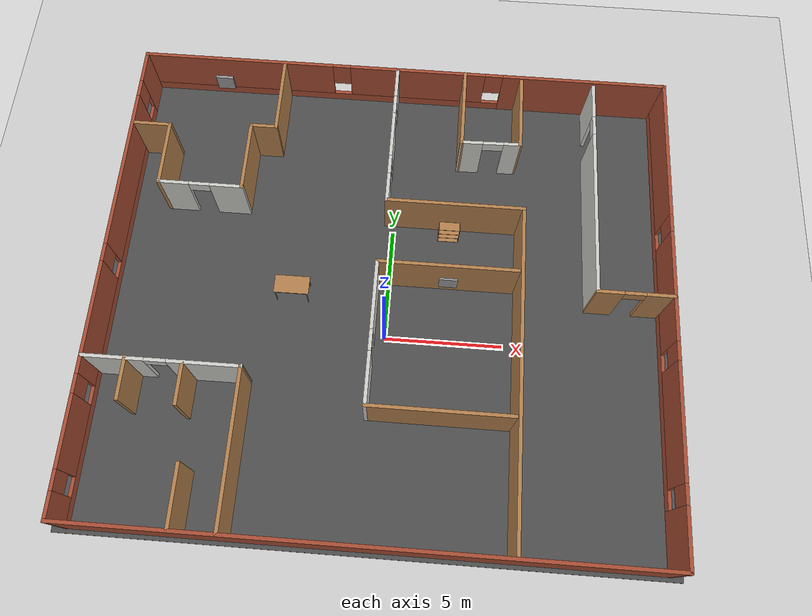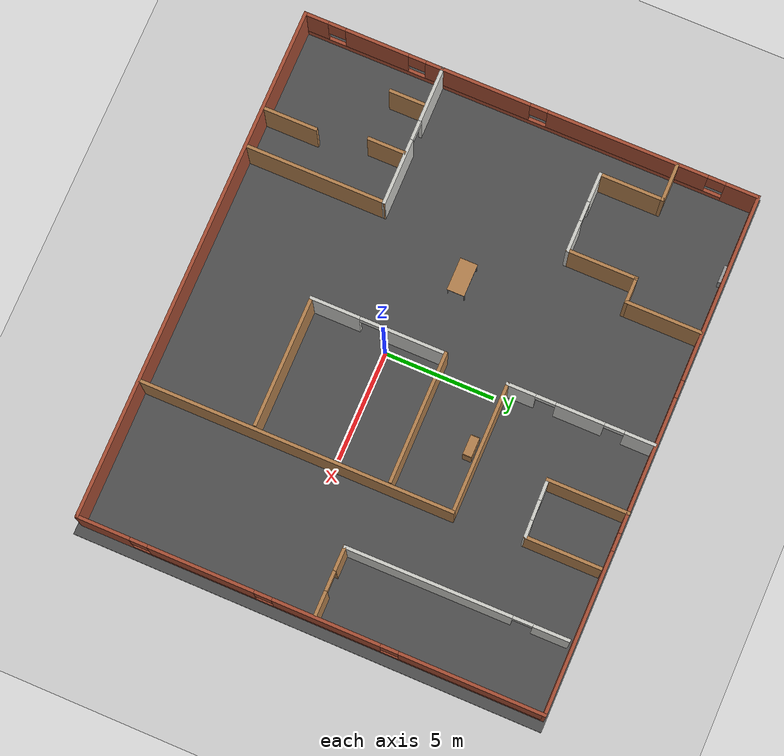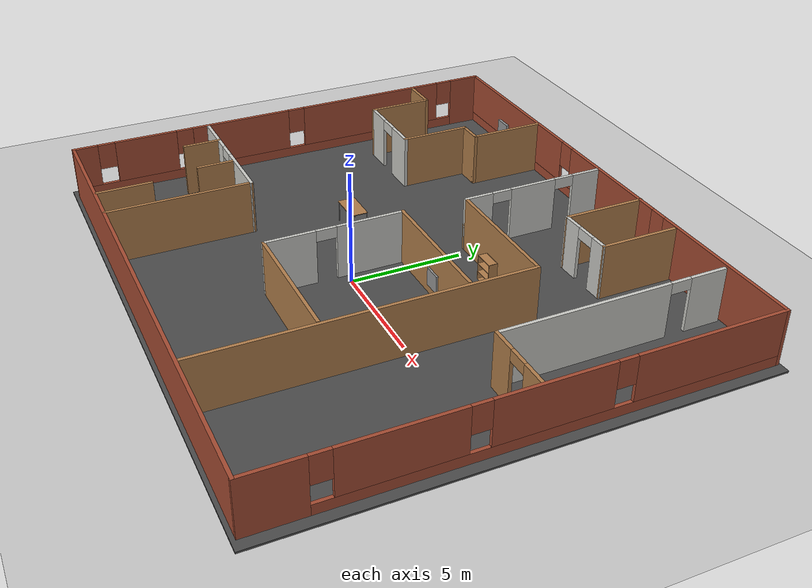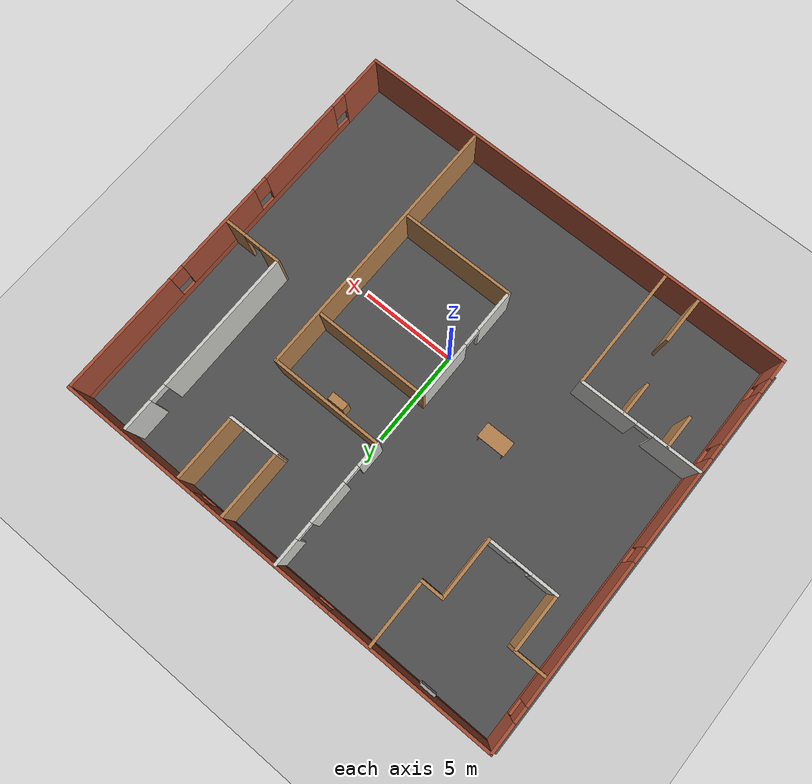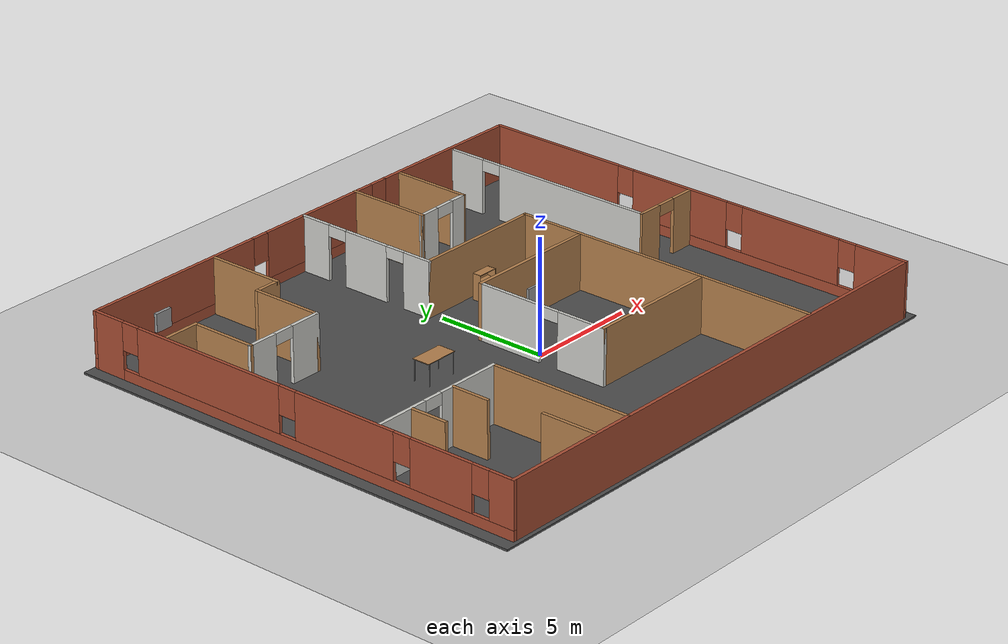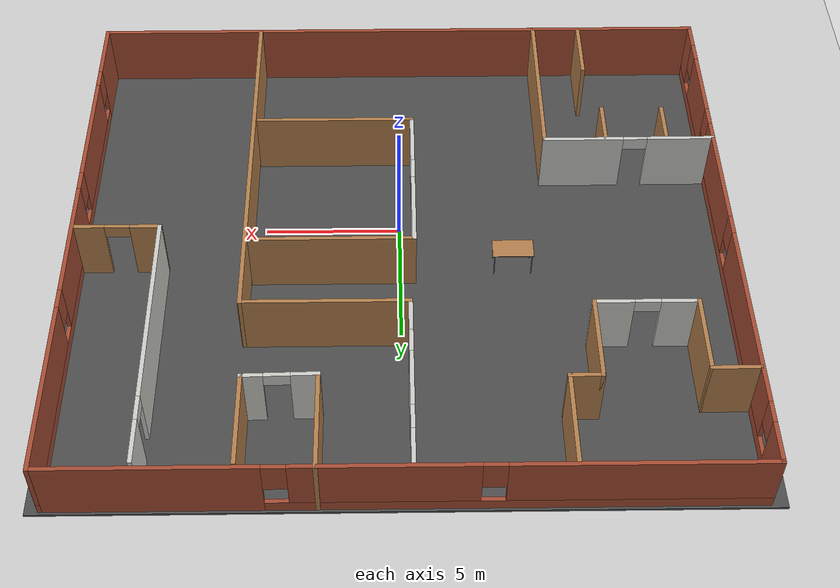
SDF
<sdf version="1.7">
 <world name="default">
  <light name="sun" type="directional">
   <pose>0 0 10 0 -0 0</pose>
   <diffuse>0.8 0.8 0.8 1</diffuse>
   <specular>0.2 0.2 0.2 1</specular>
   <attenuation>
    <range>1000</range>
    <constant>0.9</constant>
    <linear>0.01</linear>
    <quadratic>0.001</quadratic>
   </attenuation>
   <direction>-0.5 0.1 -0.9</direction>
   <spot><inner_angle>0</inner_angle><outer_angle>0</outer_angle><falloff>0</falloff></spot>
  </light>
  <model name="ground_plane">
   <static>1</static>
   <link name="link">
    <collision name="collision">
     <geometry><plane><normal>0 0 1</normal><size>100 100</size></plane></geometry>
     <surface><friction><ode><mu>100</mu><mu2>50</mu2></ode></friction></surface>
    </collision>
    <visual name="visual">
     <cast_shadows>0</cast_shadows>
     <geometry><plane><normal>0 0 1</normal><size>100 100</size></plane></geometry>
     <material>
      <script><uri>file://media/materials/scripts/gazebo.material</uri><name>Gazebo/Grey</name></script>
     </material>
    </visual>
   </link>
  </model>
  <gravity>0 0 -9.8</gravity>
  <magnetic_field>6e-06 2.3e-05 -4.2e-05</magnetic_field>
  <atmosphere type="adiabatic"/>
  <physics type="ode">
   <max_step_size>0.001</max_step_size>
   <real_time_factor>1</real_time_factor>
   <real_time_update_rate>1000</real_time_update_rate>
  </physics>
  <scene><ambient>0.4 0.4 0.4 1</ambient><background>0.7 0.7 0.7 1</background><shadows>1</shadows></scene>
  <audio><device>default</device></audio>
  <spherical_coordinates>
   <surface_model>EARTH_WGS84</surface_model>
   <latitude_deg>0</latitude_deg>
   <longitude_deg>0</longitude_deg>
   <elevation>0</elevation>
   <heading_deg>0</heading_deg>
  </spherical_coordinates>
  <model name="jetracer_plan">
   <pose>-0.073417 1.67279 0 0 -0 0</pose>
   <link name="Wall_0">
    <pose>-11.8 -0.006406 0 0 -0 -1.5708</pose>
    <visual name="Wall_0_Visual_0">
     <pose>-9.71925 0 1.25 0 -0 0</pose>
     <geometry><box><size>1.5615 0.15 2.5</size></box></geometry>
     <material>
      <script><uri>file://media/materials/scripts/gazebo.material</uri><name>Gazebo/Bricks</name></script>
      <ambient>1 1 1 1</ambient>
     </material>
     <meta><layer>0</layer></meta>
    </visual>
    <collision name="Wall_0_Collision_0">
     <geometry><box><size>1.5615 0.15 2.5</size></box></geometry>
     <pose>-9.71925 0 1.25 0 -0 0</pose>
    </collision>
    <visual name="Wall_0_Visual_1">
     <pose>0.78075 0 0.25 0 -0 0</pose>
     <geometry><box><size>19.4385 0.15 0.5</size></box></geometry>
     <material>
      <script><uri>file://media/materials/scripts/gazebo.material</uri><name>Gazebo/Bricks</name></script>
      <ambient>1 1 1 1</ambient>
     </material>
     <meta><layer>0</layer></meta>
    </visual>
    <collision name="Wall_0_Collision_1">
     <geometry><box><size>19.4385 0.15 0.5</size></box></geometry>
     <pose>0.78075 0 0.25 0 -0 0</pose>
    </collision>
    <visual name="Wall_0_Visual_2">
     <pose>-4.47355 0 1.5 0 -0 0</pose>
     <geometry><box><size>7.32991 0.15 2</size></box></geometry>
     <material>
      <script><uri>file://media/materials/scripts/gazebo.material</uri><name>Gazebo/Bricks</name></script>
      <ambient>1 1 1 1</ambient>
     </material>
     <meta><layer>0</layer></meta>
    </visual>
    <collision name="Wall_0_Collision_2">
     <geometry><box><size>7.32991 0.15 2</size></box></geometry>
     <pose>-4.47355 0 1.5 0 -0 0</pose>
    </collision>
    <visual name="Wall_0_Visual_3">
     <pose>2.40606 0 1.5 0 -0 0</pose>
     <geometry><box><size>4.82932 0.15 2</size></box></geometry>
     <material>
      <script><uri>file://media/materials/scripts/gazebo.material</uri><name>Gazebo/Bricks</name></script>
      <ambient>1 1 1 1</ambient>
     </material>
     <meta><layer>0</layer></meta>
    </visual>
    <collision name="Wall_0_Collision_3">
     <geometry><box><size>4.82932 0.15 2</size></box></geometry>
     <pose>2.40606 0 1.5 0 -0 0</pose>
    </collision>
    <visual name="Wall_0_Visual_4">
     <pose>7.08238 0 1.5 0 -0 0</pose>
     <geometry><box><size>2.9233 0.15 2</size></box></geometry>
     <material>
      <script><uri>file://media/materials/scripts/gazebo.material</uri><name>Gazebo/Bricks</name></script>
      <ambient>1 1 1 1</ambient>
     </material>
     <meta><layer>0</layer></meta>
    </visual>
    <collision name="Wall_0_Collision_4">
     <geometry><box><size>2.9233 0.15 2</size></box></geometry>
     <pose>7.08238 0 1.5 0 -0 0</pose>
    </collision>
    <visual name="Wall_0_Visual_5">
     <pose>9.92202 0 1.5 0 -0 0</pose>
     <geometry><box><size>1.15597 0.15 2</size></box></geometry>
     <material>
      <script><uri>file://media/materials/scripts/gazebo.material</uri><name>Gazebo/Bricks</name></script>
      <ambient>1 1 1 1</ambient>
     </material>
     <meta><layer>0</layer></meta>
    </visual>
    <collision name="Wall_0_Collision_5">
     <geometry><box><size>1.15597 0.15 2</size></box></geometry>
     <pose>9.92202 0 1.5 0 -0 0</pose>
    </collision>
    <visual name="Wall_0_Visual_6">
     <pose>-8.5385 0 1.9 0 -0 0</pose>
     <geometry><box><size>0.8 0.15 1.2</size></box></geometry>
     <material>
      <script><uri>file://media/materials/scripts/gazebo.material</uri><name>Gazebo/Bricks</name></script>
      <ambient>1 1 1 1</ambient>
     </material>
     <meta><layer>0</layer></meta>
    </visual>
    <collision name="Wall_0_Collision_6">
     <geometry><box><size>0.8 0.15 1.2</size></box></geometry>
     <pose>-8.5385 0 1.9 0 -0 0</pose>
    </collision>
    <visual name="Wall_0_Visual_7">
     <pose>-0.408595 0 1.9 0 -0 0</pose>
     <geometry><box><size>0.8 0.15 1.2</size></box></geometry>
     <material>
      <script><uri>file://media/materials/scripts/gazebo.material</uri><name>Gazebo/Bricks</name></script>
      <ambient>1 1 1 1</ambient>
     </material>
     <meta><layer>0</layer></meta>
    </visual>
    <collision name="Wall_0_Collision_7">
     <geometry><box><size>0.8 0.15 1.2</size></box></geometry>
     <pose>-0.408595 0 1.9 0 -0 0</pose>
    </collision>
    <visual name="Wall_0_Visual_8">
     <pose>5.22073 0 1.9 0 -0 0</pose>
     <geometry><box><size>0.8 0.15 1.2</size></box></geometry>
     <material>
      <script><uri>file://media/materials/scripts/gazebo.material</uri><name>Gazebo/Bricks</name></script>
      <ambient>1 1 1 1</ambient>
     </material>
     <meta><layer>0</layer></meta>
    </visual>
    <collision name="Wall_0_Collision_8">
     <geometry><box><size>0.8 0.15 1.2</size></box></geometry>
     <pose>5.22073 0 1.9 0 -0 0</pose>
    </collision>
    <visual name="Wall_0_Visual_9">
     <pose>8.94403 0 1.9 0 -0 0</pose>
     <geometry><box><size>0.8 0.15 1.2</size></box></geometry>
     <material>
      <script><uri>file://media/materials/scripts/gazebo.material</uri><name>Gazebo/Bricks</name></script>
      <ambient>1 1 1 1</ambient>
     </material>
     <meta><layer>0</layer></meta>
    </visual>
    <collision name="Wall_0_Collision_9">
     <geometry><box><size>0.8 0.15 1.2</size></box></geometry>
     <pose>8.94403 0 1.9 0 -0 0</pose>
    </collision>
   </link>
   <link name="Wall_1">
    <collision name="Wall_1_Collision">
     <geometry><box><size>23.75 0.15 2.5</size></box></geometry>
     <pose>0 0 1.25 0 -0 0</pose>
    </collision>
    <visual name="Wall_1_Visual">
     <pose>0 0 1.25 0 -0 0</pose>
     <geometry><box><size>23.75 0.15 2.5</size></box></geometry>
     <material>
      <script><uri>file://media/materials/scripts/gazebo.material</uri><name>Gazebo/Bricks</name></script>
      <ambient>1 1 1 1</ambient>
     </material>
     <meta><layer>0</layer></meta>
    </visual>
    <pose>0 -10.4314 0 0 -0 0</pose>
   </link>
   <link name="Wall_10">
    <collision name="Wall_10_Collision">
     <geometry><box><size>1.75 0.15 2.5</size></box></geometry>
     <pose>0 0 1.25 0 -0 0</pose>
    </collision>
    <visual name="Wall_10_Visual">
     <pose>0 0 1.25 0 -0 0</pose>
     <geometry><box><size>1.75 0.15 2.5</size></box></geometry>
     <material>
      <script><uri>file://media/materials/scripts/gazebo.material</uri><name>Gazebo/Wood</name></script>
      <ambient>1 1 1 1</ambient>
     </material>
     <meta><layer>0</layer></meta>
    </visual>
    <pose>-10.0459 -4.89784 0 0 -0 1.5708</pose>
   </link>
   <link name="Wall_12">
    <pose>-0.254809 7.05825 0 0 -0 -1.5708</pose>
    <visual name="Wall_12_Visual_0">
     <pose>-2.66527 0 1.25 0 -0 0</pose>
     <geometry><box><size>1.41945 0.15 2.5</size></box></geometry>
     <material>
      <script><uri>file://media/materials/scripts/gazebo.material</uri><name>Gazebo/CeilingTiled</name></script>
      <ambient>1 1 1 1</ambient>
     </material>
     <meta><layer>0</layer></meta>
    </visual>
    <collision name="Wall_12_Collision_0">
     <geometry><box><size>1.41945 0.15 2.5</size></box></geometry>
     <pose>-2.66527 0 1.25 0 -0 0</pose>
    </collision>
    <visual name="Wall_12_Visual_1">
     <pose>0.036887 0 1.25 0 -0 0</pose>
     <geometry><box><size>2.18486 0.15 2.5</size></box></geometry>
     <material>
      <script><uri>file://media/materials/scripts/gazebo.material</uri><name>Gazebo/CeilingTiled</name></script>
      <ambient>1 1 1 1</ambient>
     </material>
     <meta><layer>0</layer></meta>
    </visual>
    <collision name="Wall_12_Collision_1">
     <geometry><box><size>2.18486 0.15 2.5</size></box></geometry>
     <pose>0.036887 0 1.25 0 -0 0</pose>
    </collision>
    <visual name="Wall_12_Visual_2">
     <pose>2.70216 0 1.25 0 -0 0</pose>
     <geometry><box><size>1.34568 0.15 2.5</size></box></geometry>
     <material>
      <script><uri>file://media/materials/scripts/gazebo.material</uri><name>Gazebo/CeilingTiled</name></script>
      <ambient>1 1 1 1</ambient>
     </material>
     <meta><layer>0</layer></meta>
    </visual>
    <collision name="Wall_12_Collision_2">
     <geometry><box><size>1.34568 0.15 2.5</size></box></geometry>
     <pose>2.70216 0 1.25 0 -0 0</pose>
    </collision>
    <visual name="Wall_12_Visual_3">
     <pose>-1.50555 0 2.25 0 -0 0</pose>
     <geometry><box><size>0.9 0.15 0.5</size></box></geometry>
     <material>
      <script><uri>file://media/materials/scripts/gazebo.material</uri><name>Gazebo/CeilingTiled</name></script>
      <ambient>1 1 1 1</ambient>
     </material>
     <meta><layer>0</layer></meta>
    </visual>
    <collision name="Wall_12_Collision_3">
     <geometry><box><size>0.9 0.15 0.5</size></box></geometry>
     <pose>-1.50555 0 2.25 0 -0 0</pose>
    </collision>
    <visual name="Wall_12_Visual_4">
     <pose>1.57932 0 2.25 0 -0 0</pose>
     <geometry><box><size>0.9 0.15 0.5</size></box></geometry>
     <material>
      <script><uri>file://media/materials/scripts/gazebo.material</uri><name>Gazebo/CeilingTiled</name></script>
      <ambient>1 1 1 1</ambient>
     </material>
     <meta><layer>0</layer></meta>
    </visual>
    <collision name="Wall_12_Collision_4">
     <geometry><box><size>0.9 0.15 0.5</size></box></geometry>
     <pose>1.57932 0 2.25 0 -0 0</pose>
    </collision>
   </link>
   <link name="Wall_13">
    <collision name="Wall_13_Collision">
     <geometry><box><size>6 0.15 2.5</size></box></geometry>
     <pose>0 0 1.25 0 -0 0</pose>
    </collision>
    <visual name="Wall_13_Visual">
     <pose>0 0 1.25 0 -0 0</pose>
     <geometry><box><size>6 0.15 2.5</size></box></geometry>
     <material>
      <script><uri>file://media/materials/scripts/gazebo.material</uri><name>Gazebo/Wood</name></script>
      <ambient>1 1 1 1</ambient>
     </material>
     <meta><layer>0</layer></meta>
    </visual>
    <pose>2.67019 3.75825 0 0 -0 0</pose>
   </link>
   <link name="Wall_14">
    <collision name="Wall_14_Collision">
     <geometry><box><size>14.25 0.15 2.5</size></box></geometry>
     <pose>0 0 1.25 0 -0 0</pose>
    </collision>
    <visual name="Wall_14_Visual">
     <pose>0 0 1.25 0 -0 0</pose>
     <geometry><box><size>14.25 0.15 2.5</size></box></geometry>
     <material>
      <script><uri>file://media/materials/scripts/gazebo.material</uri><name>Gazebo/Wood</name></script>
      <ambient>1 1 1 1</ambient>
     </material>
     <meta><layer>0</layer></meta>
    </visual>
    <pose>5.59519 -3.29175 0 0 -0 -1.5708</pose>
   </link>
   <link name="Wall_16">
    <collision name="Wall_16_Collision">
     <geometry><box><size>6 0.15 2.5</size></box></geometry>
     <pose>0 0 1.25 0 -0 0</pose>
    </collision>
    <visual name="Wall_16_Visual">
     <pose>0 0 1.25 0 -0 0</pose>
     <geometry><box><size>6 0.15 2.5</size></box></geometry>
     <material>
      <script><uri>file://media/materials/scripts/gazebo.material</uri><name>Gazebo/Wood</name></script>
      <ambient>1 1 1 1</ambient>
     </material>
     <meta><layer>0</layer></meta>
    </visual>
    <pose>2.49222 0.884761 0 0 -0 3.14159</pose>
   </link>
   <link name="Wall_17">
    <pose>-0.432782 -2.16524 0 0 -0 -1.5708</pose>
    <visual name="Wall_17_Visual_0">
     <pose>-1.59353 0 1.25 0 -0 0</pose>
     <geometry><box><size>3.06293 0.15 2.5</size></box></geometry>
     <material>
      <script><uri>file://media/materials/scripts/gazebo.material</uri><name>Gazebo/CeilingTiled</name></script>
      <ambient>1 1 1 1</ambient>
     </material>
     <meta><layer>0</layer></meta>
    </visual>
    <collision name="Wall_17_Collision_0">
     <geometry><box><size>3.06293 0.15 2.5</size></box></geometry>
     <pose>-1.59353 0 1.25 0 -0 0</pose>
    </collision>
    <visual name="Wall_17_Visual_1">
     <pose>1.98147 0 1.25 0 -0 0</pose>
     <geometry><box><size>2.28707 0.15 2.5</size></box></geometry>
     <material>
      <script><uri>file://media/materials/scripts/gazebo.material</uri><name>Gazebo/CeilingTiled</name></script>
      <ambient>1 1 1 1</ambient>
     </material>
     <meta><layer>0</layer></meta>
    </visual>
    <collision name="Wall_17_Collision_1">
     <geometry><box><size>2.28707 0.15 2.5</size></box></geometry>
     <pose>1.98147 0 1.25 0 -0 0</pose>
    </collision>
    <visual name="Wall_17_Visual_2">
     <pose>0.387932 0 2.25 0 -0 0</pose>
     <geometry><box><size>0.9 0.15 0.5</size></box></geometry>
     <material>
      <script><uri>file://media/materials/scripts/gazebo.material</uri><name>Gazebo/CeilingTiled</name></script>
      <ambient>1 1 1 1</ambient>
     </material>
     <meta><layer>0</layer></meta>
    </visual>
    <collision name="Wall_17_Collision_2">
     <geometry><box><size>0.9 0.15 0.5</size></box></geometry>
     <pose>0.387932 0 2.25 0 -0 0</pose>
    </collision>
   </link>
   <link name="Wall_18">
    <collision name="Wall_18_Collision">
     <geometry><box><size>6 0.15 2.5</size></box></geometry>
     <pose>0 0 1.25 0 -0 0</pose>
    </collision>
    <visual name="Wall_18_Visual">
     <pose>0 0 1.25 0 -0 0</pose>
     <geometry><box><size>6 0.15 2.5</size></box></geometry>
     <material>
      <script><uri>file://media/materials/scripts/gazebo.material</uri><name>Gazebo/Wood</name></script>
      <ambient>1 1 1 1</ambient>
     </material>
     <meta><layer>0</layer></meta>
    </visual>
    <pose>2.49222 -5.21524 0 0 -0 0</pose>
   </link>
   <link name="Wall_2">
    <pose>11.8 -0.006406 0 0 -0 1.5708</pose>
    <visual name="Wall_2_Visual_0">
     <pose>-9.27157 0 1.25 0 -0 0</pose>
     <geometry><box><size>2.45686 0.15 2.5</size></box></geometry>
     <material>
      <script><uri>file://media/materials/scripts/gazebo.material</uri><name>Gazebo/Bricks</name></script>
      <ambient>1 1 1 1</ambient>
     </material>
     <meta><layer>0</layer></meta>
    </visual>
    <collision name="Wall_2_Collision_0">
     <geometry><box><size>2.45686 0.15 2.5</size></box></geometry>
     <pose>-9.27157 0 1.25 0 -0 0</pose>
    </collision>
    <visual name="Wall_2_Visual_1">
     <pose>1.22843 0 0.25 0 -0 0</pose>
     <geometry><box><size>18.5431 0.15 0.5</size></box></geometry>
     <material>
      <script><uri>file://media/materials/scripts/gazebo.material</uri><name>Gazebo/Bricks</name></script>
      <ambient>1 1 1 1</ambient>
     </material>
     <meta><layer>0</layer></meta>
    </visual>
    <collision name="Wall_2_Collision_1">
     <geometry><box><size>18.5431 0.15 0.5</size></box></geometry>
     <pose>1.22843 0 0.25 0 -0 0</pose>
    </collision>
    <visual name="Wall_2_Visual_2">
     <pose>-4.85239 0 1.5 0 -0 0</pose>
     <geometry><box><size>4.78149 0.15 2</size></box></geometry>
     <material>
      <script><uri>file://media/materials/scripts/gazebo.material</uri><name>Gazebo/Bricks</name></script>
      <ambient>1 1 1 1</ambient>
     </material>
     <meta><layer>0</layer></meta>
    </visual>
    <collision name="Wall_2_Collision_2">
     <geometry><box><size>4.78149 0.15 2</size></box></geometry>
     <pose>-4.85239 0 1.5 0 -0 0</pose>
    </collision>
    <visual name="Wall_2_Visual_3">
     <pose>0.752553 0 1.5 0 -0 0</pose>
     <geometry><box><size>4.8284 0.15 2</size></box></geometry>
     <material>
      <script><uri>file://media/materials/scripts/gazebo.material</uri><name>Gazebo/Bricks</name></script>
      <ambient>1 1 1 1</ambient>
     </material>
     <meta><layer>0</layer></meta>
    </visual>
    <collision name="Wall_2_Collision_3">
     <geometry><box><size>4.8284 0.15 2</size></box></geometry>
     <pose>0.752553 0 1.5 0 -0 0</pose>
    </collision>
    <visual name="Wall_2_Visual_4">
     <pose>7.23337 0 1.5 0 -0 0</pose>
     <geometry><box><size>6.53325 0.15 2</size></box></geometry>
     <material>
      <script><uri>file://media/materials/scripts/gazebo.material</uri><name>Gazebo/Bricks</name></script>
      <ambient>1 1 1 1</ambient>
     </material>
     <meta><layer>0</layer></meta>
    </visual>
    <collision name="Wall_2_Collision_4">
     <geometry><box><size>6.53325 0.15 2</size></box></geometry>
     <pose>7.23337 0 1.5 0 -0 0</pose>
    </collision>
    <visual name="Wall_2_Visual_5">
     <pose>-7.64314 0 1.9 0 -0 0</pose>
     <geometry><box><size>0.8 0.15 1.2</size></box></geometry>
     <material>
      <script><uri>file://media/materials/scripts/gazebo.material</uri><name>Gazebo/Bricks</name></script>
      <ambient>1 1 1 1</ambient>
     </material>
     <meta><layer>0</layer></meta>
    </visual>
    <collision name="Wall_2_Collision_5">
     <geometry><box><size>0.8 0.15 1.2</size></box></geometry>
     <pose>-7.64314 0 1.9 0 -0 0</pose>
    </collision>
    <visual name="Wall_2_Visual_6">
     <pose>-2.06164 0 1.9 0 -0 0</pose>
     <geometry><box><size>0.8 0.15 1.2</size></box></geometry>
     <material>
      <script><uri>file://media/materials/scripts/gazebo.material</uri><name>Gazebo/Bricks</name></script>
      <ambient>1 1 1 1</ambient>
     </material>
     <meta><layer>0</layer></meta>
    </visual>
    <collision name="Wall_2_Collision_6">
     <geometry><box><size>0.8 0.15 1.2</size></box></geometry>
     <pose>-2.06164 0 1.9 0 -0 0</pose>
    </collision>
    <visual name="Wall_2_Visual_7">
     <pose>3.56675 0 1.9 0 -0 0</pose>
     <geometry><box><size>0.8 0.15 1.2</size></box></geometry>
     <material>
      <script><uri>file://media/materials/scripts/gazebo.material</uri><name>Gazebo/Bricks</name></script>
      <ambient>1 1 1 1</ambient>
     </material>
     <meta><layer>0</layer></meta>
    </visual>
    <collision name="Wall_2_Collision_7">
     <geometry><box><size>0.8 0.15 1.2</size></box></geometry>
     <pose>3.56675 0 1.9 0 -0 0</pose>
    </collision>
   </link>
   <link name="Wall_20">
    <collision name="Wall_20_Collision">
     <geometry><box><size>3.5 0.15 2.5</size></box></geometry>
     <pose>0 0 1.25 0 -0 0</pose>
    </collision>
    <visual name="Wall_20_Visual">
     <pose>0 0 1.25 0 -0 0</pose>
     <geometry><box><size>3.5 0.15 2.5</size></box></geometry>
     <material>
      <script><uri>file://media/materials/scripts/gazebo.material</uri><name>Gazebo/Wood</name></script>
      <ambient>1 1 1 1</ambient>
     </material>
     <meta><layer>0</layer></meta>
    </visual>
    <pose>-5.424 8.66314 0 0 -0 -1.5708</pose>
   </link>
   <link name="Wall_22">
    <collision name="Wall_22_Collision">
     <geometry><box><size>1.25 0.15 2.5</size></box></geometry>
     <pose>0 0 1.25 0 -0 0</pose>
    </collision>
    <visual name="Wall_22_Visual">
     <pose>0 0 1.25 0 -0 0</pose>
     <geometry><box><size>1.25 0.15 2.5</size></box></geometry>
     <material>
      <script><uri>file://media/materials/scripts/gazebo.material</uri><name>Gazebo/Wood</name></script>
      <ambient>1 1 1 1</ambient>
     </material>
     <meta><layer>0</layer></meta>
    </visual>
    <pose>-5.974 6.98814 0 0 -0 3.14159</pose>
   </link>
   <link name="Wall_23">
    <collision name="Wall_23_Collision">
     <geometry><box><size>3.25 0.15 2.5</size></box></geometry>
     <pose>0 0 1.25 0 -0 0</pose>
    </collision>
    <visual name="Wall_23_Visual">
     <pose>0 0 1.25 0 -0 0</pose>
     <geometry><box><size>3.25 0.15 2.5</size></box></geometry>
     <material>
      <script><uri>file://media/materials/scripts/gazebo.material</uri><name>Gazebo/Wood</name></script>
      <ambient>1 1 1 1</ambient>
     </material>
     <meta><layer>0</layer></meta>
    </visual>
    <pose>-6.524 5.43814 0 0 -0 -1.5708</pose>
   </link>
   <link name="Wall_24">
    <pose>-8.324 3.88814 0 0 -0 3.14159</pose>
    <visual name="Wall_24_Visual_0">
     <pose>-1.14284 0 1.25 0 -0 0</pose>
     <geometry><box><size>1.46433 0.15 2.5</size></box></geometry>
     <material>
      <script><uri>file://media/materials/scripts/gazebo.material</uri><name>Gazebo/CeilingTiled</name></script>
      <ambient>1 1 1 1</ambient>
     </material>
     <meta><layer>0</layer></meta>
    </visual>
    <collision name="Wall_24_Collision_0">
     <geometry><box><size>1.46433 0.15 2.5</size></box></geometry>
     <pose>-1.14284 0 1.25 0 -0 0</pose>
    </collision>
    <visual name="Wall_24_Visual_1">
     <pose>1.18216 0 1.25 0 -0 0</pose>
     <geometry><box><size>1.38567 0.15 2.5</size></box></geometry>
     <material>
      <script><uri>file://media/materials/scripts/gazebo.material</uri><name>Gazebo/CeilingTiled</name></script>
      <ambient>1 1 1 1</ambient>
     </material>
     <meta><layer>0</layer></meta>
    </visual>
    <collision name="Wall_24_Collision_1">
     <geometry><box><size>1.38567 0.15 2.5</size></box></geometry>
     <pose>1.18216 0 1.25 0 -0 0</pose>
    </collision>
    <visual name="Wall_24_Visual_2">
     <pose>0.039327 0 2.25 0 -0 0</pose>
     <geometry><box><size>0.9 0.15 0.5</size></box></geometry>
     <material>
      <script><uri>file://media/materials/scripts/gazebo.material</uri><name>Gazebo/CeilingTiled</name></script>
      <ambient>1 1 1 1</ambient>
     </material>
     <meta><layer>0</layer></meta>
    </visual>
    <collision name="Wall_24_Collision_2">
     <geometry><box><size>0.9 0.15 0.5</size></box></geometry>
     <pose>0.039327 0 2.25 0 -0 0</pose>
    </collision>
   </link>
   <link name="Wall_25">
    <collision name="Wall_25_Collision">
     <geometry><box><size>3 0.15 2.5</size></box></geometry>
     <pose>0 0 1.25 0 -0 0</pose>
    </collision>
    <visual name="Wall_25_Visual">
     <pose>0 0 1.25 0 -0 0</pose>
     <geometry><box><size>3 0.15 2.5</size></box></geometry>
     <material>
      <script><uri>file://media/materials/scripts/gazebo.material</uri><name>Gazebo/Wood</name></script>
      <ambient>1 1 1 1</ambient>
     </material>
     <meta><layer>0</layer></meta>
    </visual>
    <pose>-10.124 5.31314 0 0 -0 1.5708</pose>
   </link>
   <link name="Wall_26">
    <collision name="Wall_26_Collision">
     <geometry><box><size>1.75 0.15 2.5</size></box></geometry>
     <pose>0 0 1.25 0 -0 0</pose>
    </collision>
    <visual name="Wall_26_Visual">
     <pose>0 0 1.25 0 -0 0</pose>
     <geometry><box><size>1.75 0.15 2.5</size></box></geometry>
     <material>
      <script><uri>file://media/materials/scripts/gazebo.material</uri><name>Gazebo/Wood</name></script>
      <ambient>1 1 1 1</ambient>
     </material>
     <meta><layer>0</layer></meta>
    </visual>
    <pose>-10.924 6.73814 0 0 -0 3.14159</pose>
   </link>
   <link name="Wall_28">
    <collision name="Wall_28_Collision">
     <geometry><box><size>2.5 0.15 2.5</size></box></geometry>
     <pose>0 0 1.25 0 -0 0</pose>
    </collision>
    <visual name="Wall_28_Visual">
     <pose>0 0 1.25 0 -0 0</pose>
     <geometry><box><size>2.5 0.15 2.5</size></box></geometry>
     <material>
      <script><uri>file://media/materials/scripts/gazebo.material</uri><name>Gazebo/Wood</name></script>
      <ambient>1 1 1 1</ambient>
     </material>
     <meta><layer>0</layer></meta>
    </visual>
    <pose>-7.24314 -9.15893 0 0 -0 -1.5708</pose>
   </link>
   <link name="Wall_3">
    <pose>0 10.4186 0 0 -0 3.14159</pose>
    <visual name="Wall_3_Visual_0">
     <pose>-8.20375 0 1.25 0 -0 0</pose>
     <geometry><box><size>7.3425 0.15 2.5</size></box></geometry>
     <material>
      <script><uri>file://media/materials/scripts/gazebo.material</uri><name>Gazebo/Bricks</name></script>
      <ambient>1 1 1 1</ambient>
     </material>
     <meta><layer>0</layer></meta>
    </visual>
    <collision name="Wall_3_Collision_0">
     <geometry><box><size>7.3425 0.15 2.5</size></box></geometry>
     <pose>-8.20375 0 1.25 0 -0 0</pose>
    </collision>
    <visual name="Wall_3_Visual_1">
     <pose>3.67125 0 0.25 0 -0 0</pose>
     <geometry><box><size>16.4075 0.15 0.5</size></box></geometry>
     <material>
      <script><uri>file://media/materials/scripts/gazebo.material</uri><name>Gazebo/Bricks</name></script>
      <ambient>1 1 1 1</ambient>
     </material>
     <meta><layer>0</layer></meta>
    </visual>
    <collision name="Wall_3_Collision_1">
     <geometry><box><size>16.4075 0.15 0.5</size></box></geometry>
     <pose>3.67125 0 0.25 0 -0 0</pose>
    </collision>
    <visual name="Wall_3_Visual_2">
     <pose>-0.65384 0 1.5 0 -0 0</pose>
     <geometry><box><size>6.15732 0.15 2</size></box></geometry>
     <material>
      <script><uri>file://media/materials/scripts/gazebo.material</uri><name>Gazebo/Bricks</name></script>
      <ambient>1 1 1 1</ambient>
     </material>
     <meta><layer>0</layer></meta>
    </visual>
    <collision name="Wall_3_Collision_2">
     <geometry><box><size>6.15732 0.15 2</size></box></geometry>
     <pose>-0.65384 0 1.5 0 -0 0</pose>
    </collision>
    <visual name="Wall_3_Visual_3">
     <pose>7.54991 0 1.5 0 -0 0</pose>
     <geometry><box><size>8.65018 0.15 2</size></box></geometry>
     <material>
      <script><uri>file://media/materials/scripts/gazebo.material</uri><name>Gazebo/Bricks</name></script>
      <ambient>1 1 1 1</ambient>
     </material>
     <meta><layer>0</layer></meta>
    </visual>
    <collision name="Wall_3_Collision_3">
     <geometry><box><size>8.65018 0.15 2</size></box></geometry>
     <pose>7.54991 0 1.5 0 -0 0</pose>
    </collision>
    <visual name="Wall_3_Visual_4">
     <pose>-4.1325 0 1.9 0 -0 0</pose>
     <geometry><box><size>0.8 0.15 1.2</size></box></geometry>
     <material>
      <script><uri>file://media/materials/scripts/gazebo.material</uri><name>Gazebo/Bricks</name></script>
      <ambient>1 1 1 1</ambient>
     </material>
     <meta><layer>0</layer></meta>
    </visual>
    <collision name="Wall_3_Collision_4">
     <geometry><box><size>0.8 0.15 1.2</size></box></geometry>
     <pose>-4.1325 0 1.9 0 -0 0</pose>
    </collision>
    <visual name="Wall_3_Visual_5">
     <pose>2.82482 0 1.9 0 -0 0</pose>
     <geometry><box><size>0.8 0.15 1.2</size></box></geometry>
     <material>
      <script><uri>file://media/materials/scripts/gazebo.material</uri><name>Gazebo/Bricks</name></script>
      <ambient>1 1 1 1</ambient>
     </material>
     <meta><layer>0</layer></meta>
    </visual>
    <collision name="Wall_3_Collision_5">
     <geometry><box><size>0.8 0.15 1.2</size></box></geometry>
     <pose>2.82482 0 1.9 0 -0 0</pose>
    </collision>
   </link>
   <link name="Wall_30">
    <collision name="Wall_30_Collision">
     <geometry><box><size>3.75 0.15 2.5</size></box></geometry>
     <pose>0 0 1.25 0 -0 0</pose>
    </collision>
    <visual name="Wall_30_Visual">
     <pose>0 0 1.25 0 -0 0</pose>
     <geometry><box><size>3.75 0.15 2.5</size></box></geometry>
     <material>
      <script><uri>file://media/materials/scripts/gazebo.material</uri><name>Gazebo/Wood</name></script>
      <ambient>1 1 1 1</ambient>
     </material>
     <meta><layer>0</layer></meta>
    </visual>
    <pose>2.81911 8.63141 0 0 -0 -1.5708</pose>
   </link>
   <link name="Wall_31">
    <pose>4.09949 6.86083 0 0 -0 0.022974</pose>
    <visual name="Wall_31_Visual_0">
     <pose>-0.858041 0 1.25 0 -0 0</pose>
     <geometry><box><size>0.995366 0.15 2.5</size></box></geometry>
     <material>
      <script><uri>file://media/materials/scripts/gazebo.material</uri><name>Gazebo/CeilingTiled</name></script>
      <ambient>1 1 1 1</ambient>
     </material>
     <meta><layer>0</layer></meta>
    </visual>
    <collision name="Wall_31_Collision_0">
     <geometry><box><size>0.995366 0.15 2.5</size></box></geometry>
     <pose>-0.858041 0 1.25 0 -0 0</pose>
    </collision>
    <visual name="Wall_31_Visual_1">
     <pose>0.947683 0 1.25 0 -0 0</pose>
     <geometry><box><size>0.816082 0.15 2.5</size></box></geometry>
     <material>
      <script><uri>file://media/materials/scripts/gazebo.material</uri><name>Gazebo/CeilingTiled</name></script>
      <ambient>1 1 1 1</ambient>
     </material>
     <meta><layer>0</layer></meta>
    </visual>
    <collision name="Wall_31_Collision_1">
     <geometry><box><size>0.816082 0.15 2.5</size></box></geometry>
     <pose>0.947683 0 1.25 0 -0 0</pose>
    </collision>
    <visual name="Wall_31_Visual_2">
     <pose>0.089642 0 2.25 0 -0 0</pose>
     <geometry><box><size>0.9 0.15 0.5</size></box></geometry>
     <material>
      <script><uri>file://media/materials/scripts/gazebo.material</uri><name>Gazebo/CeilingTiled</name></script>
      <ambient>1 1 1 1</ambient>
     </material>
     <meta><layer>0</layer></meta>
    </visual>
    <collision name="Wall_31_Collision_2">
     <geometry><box><size>0.9 0.15 0.5</size></box></geometry>
     <pose>0.089642 0 2.25 0 -0 0</pose>
    </collision>
   </link>
   <link name="Wall_32">
    <collision name="Wall_32_Collision">
     <geometry><box><size>3.5 0.15 2.5</size></box></geometry>
     <pose>0 0 1.25 0 -0 0</pose>
    </collision>
    <visual name="Wall_32_Visual">
     <pose>0 0 1.25 0 -0 0</pose>
     <geometry><box><size>3.5 0.15 2.5</size></box></geometry>
     <material>
      <script><uri>file://media/materials/scripts/gazebo.material</uri><name>Gazebo/Wood</name></script>
      <ambient>1 1 1 1</ambient>
     </material>
     <meta><layer>0</layer></meta>
    </visual>
    <pose>5.37988 8.56525 0 0 -0 1.5708</pose>
   </link>
   <link name="Wall_34">
    <pose>10.2063 0.230365 0 0 -0 3.14159</pose>
    <visual name="Wall_34_Visual_0">
     <pose>-1.02534 0 1.25 0 -0 0</pose>
     <geometry><box><size>1.19932 0.15 2.5</size></box></geometry>
     <material>
      <script><uri>file://media/materials/scripts/gazebo.material</uri><name>Gazebo/Wood</name></script>
      <ambient>1 1 1 1</ambient>
     </material>
     <meta><layer>0</layer></meta>
    </visual>
    <collision name="Wall_34_Collision_0">
     <geometry><box><size>1.19932 0.15 2.5</size></box></geometry>
     <pose>-1.02534 0 1.25 0 -0 0</pose>
    </collision>
    <visual name="Wall_34_Visual_1">
     <pose>1.04966 0 1.25 0 -0 0</pose>
     <geometry><box><size>1.15068 0.15 2.5</size></box></geometry>
     <material>
      <script><uri>file://media/materials/scripts/gazebo.material</uri><name>Gazebo/Wood</name></script>
      <ambient>1 1 1 1</ambient>
     </material>
     <meta><layer>0</layer></meta>
    </visual>
    <collision name="Wall_34_Collision_1">
     <geometry><box><size>1.15068 0.15 2.5</size></box></geometry>
     <pose>1.04966 0 1.25 0 -0 0</pose>
    </collision>
    <visual name="Wall_34_Visual_2">
     <pose>0.02432 0 2.25 0 -0 0</pose>
     <geometry><box><size>0.9 0.15 0.5</size></box></geometry>
     <material>
      <script><uri>file://media/materials/scripts/gazebo.material</uri><name>Gazebo/Wood</name></script>
      <ambient>1 1 1 1</ambient>
     </material>
     <meta><layer>0</layer></meta>
    </visual>
    <collision name="Wall_34_Collision_2">
     <geometry><box><size>0.9 0.15 0.5</size></box></geometry>
     <pose>0.02432 0 2.25 0 -0 0</pose>
    </collision>
   </link>
   <link name="Wall_35">
    <pose>8.6367 5.20287 0 0 -0 1.57476</pose>
    <visual name="Wall_35_Visual_0">
     <pose>-1.27333 0 1.25 0 -0 0</pose>
     <geometry><box><size>7.50919 0.15 2.5</size></box></geometry>
     <material>
      <script><uri>file://media/materials/scripts/gazebo.material</uri><name>Gazebo/CeilingTiled</name></script>
      <ambient>1 1 1 1</ambient>
     </material>
     <meta><layer>0</layer></meta>
    </visual>
    <collision name="Wall_35_Collision_0">
     <geometry><box><size>7.50919 0.15 2.5</size></box></geometry>
     <pose>-1.27333 0 1.25 0 -0 0</pose>
    </collision>
    <visual name="Wall_35_Visual_1">
     <pose>4.2046 0 1.25 0 -0 0</pose>
     <geometry><box><size>1.64666 0.15 2.5</size></box></geometry>
     <material>
      <script><uri>file://media/materials/scripts/gazebo.material</uri><name>Gazebo/CeilingTiled</name></script>
      <ambient>1 1 1 1</ambient>
     </material>
     <meta><layer>0</layer></meta>
    </visual>
    <collision name="Wall_35_Collision_1">
     <geometry><box><size>1.64666 0.15 2.5</size></box></geometry>
     <pose>4.2046 0 1.25 0 -0 0</pose>
    </collision>
    <visual name="Wall_35_Visual_2">
     <pose>2.93127 0 2.25 0 -0 0</pose>
     <geometry><box><size>0.9 0.15 0.5</size></box></geometry>
     <material>
      <script><uri>file://media/materials/scripts/gazebo.material</uri><name>Gazebo/CeilingTiled</name></script>
      <ambient>1 1 1 1</ambient>
     </material>
     <meta><layer>0</layer></meta>
    </visual>
    <collision name="Wall_35_Collision_2">
     <geometry><box><size>0.9 0.15 0.5</size></box></geometry>
     <pose>2.93127 0 2.25 0 -0 0</pose>
    </collision>
   </link>
   <link name="Wall_5">
    <pose>-8.60489 -4.05021 0 0 -0 0.004085</pose>
    <visual name="Wall_5_Visual_0">
     <pose>-1.97391 0 1.25 0 -0 0</pose>
     <geometry><box><size>2.55217 0.15 2.5</size></box></geometry>
     <material>
      <script><uri>file://media/materials/scripts/gazebo.material</uri><name>Gazebo/CeilingTiled</name></script>
      <ambient>1 1 1 1</ambient>
     </material>
     <meta><layer>0</layer></meta>
    </visual>
    <collision name="Wall_5_Collision_0">
     <geometry><box><size>2.55217 0.15 2.5</size></box></geometry>
     <pose>-1.97391 0 1.25 0 -0 0</pose>
    </collision>
    <visual name="Wall_5_Visual_1">
     <pose>1.72609 0 1.25 0 -0 0</pose>
     <geometry><box><size>3.04783 0.15 2.5</size></box></geometry>
     <material>
      <script><uri>file://media/materials/scripts/gazebo.material</uri><name>Gazebo/CeilingTiled</name></script>
      <ambient>1 1 1 1</ambient>
     </material>
     <meta><layer>0</layer></meta>
    </visual>
    <collision name="Wall_5_Collision_1">
     <geometry><box><size>3.04783 0.15 2.5</size></box></geometry>
     <pose>1.72609 0 1.25 0 -0 0</pose>
    </collision>
    <visual name="Wall_5_Visual_2">
     <pose>-0.247828 0 2.25 0 -0 0</pose>
     <geometry><box><size>0.9 0.15 0.5</size></box></geometry>
     <material>
      <script><uri>file://media/materials/scripts/gazebo.material</uri><name>Gazebo/CeilingTiled</name></script>
      <ambient>1 1 1 1</ambient>
     </material>
     <meta><layer>0</layer></meta>
    </visual>
    <collision name="Wall_5_Collision_2">
     <geometry><box><size>0.9 0.15 0.5</size></box></geometry>
     <pose>-0.247828 0 2.25 0 -0 0</pose>
    </collision>
   </link>
   <link name="Wall_6">
    <collision name="Wall_6_Collision">
     <geometry><box><size>6.5 0.15 2.5</size></box></geometry>
     <pose>0 0 1.25 0 -0 0</pose>
    </collision>
    <visual name="Wall_6_Visual">
     <pose>0 0 1.25 0 -0 0</pose>
     <geometry><box><size>6.5 0.15 2.5</size></box></geometry>
     <material>
      <script><uri>file://media/materials/scripts/gazebo.material</uri><name>Gazebo/Wood</name></script>
      <ambient>1 1 1 1</ambient>
     </material>
     <meta><layer>0</layer></meta>
    </visual>
    <pose>-5.42989 -7.22521 0 0 -0 -1.5708</pose>
   </link>
   <link name="Wall_8">
    <collision name="Wall_8_Collision">
     <geometry><box><size>1.75 0.15 2.5</size></box></geometry>
     <pose>0 0 1.25 0 -0 0</pose>
    </collision>
    <visual name="Wall_8_Visual">
     <pose>0 0 1.25 0 -0 0</pose>
     <geometry><box><size>1.75 0.15 2.5</size></box></geometry>
     <material>
      <script><uri>file://media/materials/scripts/gazebo.material</uri><name>Gazebo/Wood</name></script>
      <ambient>1 1 1 1</ambient>
     </material>
     <meta><layer>0</layer></meta>
    </visual>
    <pose>-7.74737 -4.91984 0 0 -0 1.5708</pose>
   </link>
   <link name="Window_2">
    <collision name="Window_2_Collision">
     <geometry><box><size>0.8 0.17 0.8</size></box></geometry>
     <pose>0 0 0.4 0 -0 0</pose>
    </collision>
    <visual name="Window_2_Visual">
     <pose>0 0 0.4 0 -0 0</pose>
     <geometry><box><size>0.8 0.17 0.8</size></box></geometry>
     <material>
      <script><uri>file://media/materials/scripts/gazebo.material</uri><name>Gazebo/Grey</name></script>
     </material>
    </visual>
    <pose>-8.42195 10.2988 0.5 0 -0 0</pose>
   </link>
   <link name="Window_9">
    <collision name="Window_9_Collision">
     <geometry><box><size>0.8 0.17 0.8</size></box></geometry>
     <pose>0 0 0.4 0 -0 0</pose>
    </collision>
    <visual name="Window_9_Visual">
     <pose>0 0 0.4 0 -0 0</pose>
     <geometry><box><size>0.8 0.17 0.8</size></box></geometry>
     <material>
      <script><uri>file://media/materials/scripts/gazebo.material</uri><name>Gazebo/Grey</name></script>
     </material>
    </visual>
    <pose>2.61596 0.808685 0.5 0 -0 0</pose>
   </link>
   <static>1</static>
  </model>
  <model name="bookshelf">
   <static>1</static>
   <link name="link">
    <inertial><mass>1</mass></inertial>
    <collision name="back">
     <pose>0 0.005 0.6 0 -0 0</pose>
     <geometry><box><size>0.9 0.01 1.2</size></box></geometry>
    </collision>
    <visual name="visual1">
     <pose>0 0.005 0.6 0 -0 0</pose>
     <geometry><box><size>0.9 0.01 1.2</size></box></geometry>
     <material>
      <script><uri>file://media/materials/scripts/gazebo.material</uri><name>Gazebo/Wood</name></script>
     </material>
    </visual>
    <collision name="left_side">
     <pose>0.45 -0.195 0.6 0 -0 0</pose>
     <geometry><box><size>0.02 0.4 1.2</size></box></geometry>
    </collision>
    <visual name="visual2">
     <pose>0.45 -0.195 0.6 0 -0 0</pose>
     <geometry><box><size>0.02 0.4 1.2</size></box></geometry>
     <material>
      <script><uri>file://media/materials/scripts/gazebo.material</uri><name>Gazebo/Wood</name></script>
     </material>
    </visual>
    <collision name="right_side">
     <pose>-0.45 -0.195 0.6 0 -0 0</pose>
     <geometry><box><size>0.02 0.4 1.2</size></box></geometry>
    </collision>
    <visual name="visual3">
     <pose>-0.45 -0.195 0.6 0 -0 0</pose>
     <geometry><box><size>0.02 0.4 1.2</size></box></geometry>
     <material>
      <script><uri>file://media/materials/scripts/gazebo.material</uri><name>Gazebo/Wood</name></script>
     </material>
    </visual>
    <collision name="bottom">
     <pose>0 -0.195 0.03 0 -0 0</pose>
     <geometry><box><size>0.88 0.4 0.06</size></box></geometry>
    </collision>
    <visual name="visual4">
     <pose>0 -0.195 0.03 0 -0 0</pose>
     <geometry><box><size>0.88 0.4 0.06</size></box></geometry>
     <material>
      <script><uri>file://media/materials/scripts/gazebo.material</uri><name>Gazebo/Wood</name></script>
     </material>
    </visual>
    <collision name="top">
     <pose>0 -0.195 1.19 0 -0 0</pose>
     <geometry><box><size>0.88 0.4 0.02</size></box></geometry>
    </collision>
    <visual name="visual5">
     <pose>0 -0.195 1.19 0 -0 0</pose>
     <geometry><box><size>0.88 0.4 0.02</size></box></geometry>
     <material>
      <script><uri>file://media/materials/scripts/gazebo.material</uri><name>Gazebo/Wood</name></script>
     </material>
    </visual>
    <collision name="low_shelf">
     <pose>0 -0.195 0.43 0 -0 0</pose>
     <geometry><box><size>0.88 0.4 0.02</size></box></geometry>
    </collision>
    <visual name="visual6">
     <pose>0 -0.195 0.43 0 -0 0</pose>
     <geometry><box><size>0.88 0.4 0.02</size></box></geometry>
     <material>
      <script><uri>file://media/materials/scripts/gazebo.material</uri><name>Gazebo/Wood</name></script>
     </material>
    </visual>
    <collision name="high_shelf">
     <pose>0 -0.195 0.8 0 -0 0</pose>
     <geometry><box><size>0.88 0.4 0.02</size></box></geometry>
    </collision>
    <visual name="visual7">
     <pose>0 -0.195 0.8 0 -0 0</pose>
     <geometry><box><size>0.88 0.4 0.02</size></box></geometry>
     <material>
      <script><uri>file://media/materials/scripts/gazebo.material</uri><name>Gazebo/Wood</name></script>
     </material>
    </visual>
   </link>
   <pose>2.47248 5.1816 0 0 -0 0</pose>
  </model>
  <model name="asphalt_plane">
   <static>1</static>
   <link name="link">
    <collision name="collision"><geometry><box><size>24.7538 21.262 0.1</size></box></geometry></collision>
    <visual name="visual">
     <cast_shadows>0</cast_shadows>
     <geometry><box><size>24.7538 21.262 0.1</size></box></geometry>
     <material>
      <script>
       <uri>model://asphalt_plane/materials/scripts</uri>
       <uri>model://asphalt_plane/materials/textures</uri>
       <name>vrc/asphalt</name>
      </script>
     </material>
    </visual>
   </link>
   <pose>-0.119422 1.62375 0 0 -0 0</pose>
  </model>
  <model name="table">
   <static>1</static>
   <link name="link">
    <collision name="surface">
     <pose>0 0 1 0 -0 0</pose>
     <geometry><box><size>1.5 0.8 0.03</size></box></geometry>
     <surface><friction><ode><mu>0.6</mu><mu2>0.6</mu2></ode></friction></surface>
    </collision>
    <visual name="visual1">
     <pose>0 0 1 0 -0 0</pose>
     <geometry><box><size>1.5 0.8 0.03</size></box></geometry>
     <material>
      <script><uri>file://media/materials/scripts/gazebo.material</uri><name>Gazebo/Wood</name></script>
     </material>
    </visual>
    <collision name="front_left_leg">
     <pose>0.68 0.38 0.5 0 -0 0</pose>
     <geometry><cylinder><radius>0.02</radius><length>1</length></cylinder></geometry>
    </collision>
    <visual name="front_left_leg">
     <pose>0.68 0.38 0.5 0 -0 0</pose>
     <geometry><cylinder><radius>0.02</radius><length>1</length></cylinder></geometry>
     <material>
      <script>
       <uri>/usr/share/gazebo-11/media/materials/scripts/gazebo.material</uri>
       <name>Gazebo/Grey</name>
      </script>
     </material>
    </visual>
    <collision name="front_right_leg">
     <pose>0.68 -0.38 0.5 0 -0 0</pose>
     <geometry><cylinder><radius>0.02</radius><length>1</length></cylinder></geometry>
    </collision>
    <visual name="front_right_leg">
     <pose>0.68 -0.38 0.5 0 -0 0</pose>
     <geometry><cylinder><radius>0.02</radius><length>1</length></cylinder></geometry>
     <material>
      <script><uri>file://media/materials/scripts/gazebo.material</uri><name>Gazebo/Grey</name></script>
     </material>
    </visual>
    <collision name="back_right_leg">
     <pose>-0.68 -0.38 0.5 0 -0 0</pose>
     <geometry><cylinder><radius>0.02</radius><length>1</length></cylinder></geometry>
    </collision>
    <visual name="back_right_leg">
     <pose>-0.68 -0.38 0.5 0 -0 0</pose>
     <geometry><cylinder><radius>0.02</radius><length>1</length></cylinder></geometry>
     <material>
      <script><uri>file://media/materials/scripts/gazebo.material</uri><name>Gazebo/Grey</name></script>
     </material>
    </visual>
    <collision name="back_left_leg">
     <pose>-0.68 0.38 0.5 0 -0 0</pose>
     <geometry><cylinder><radius>0.02</radius><length>1</length></cylinder></geometry>
    </collision>
    <visual name="back_left_leg">
     <pose>-0.68 0.38 0.5 0 -0 0</pose>
     <geometry><cylinder><radius>0.02</radius><length>1</length></cylinder></geometry>
     <material>
      <script><uri>file://media/materials/scripts/gazebo.material</uri><name>Gazebo/Grey</name></script>
     </material>
    </visual>
   </link>
   <pose>-4.1312 1.80899 0 0 -0 0</pose>
  </model>
 </world>
</sdf>
